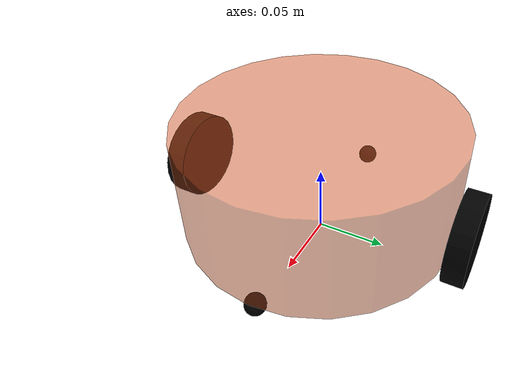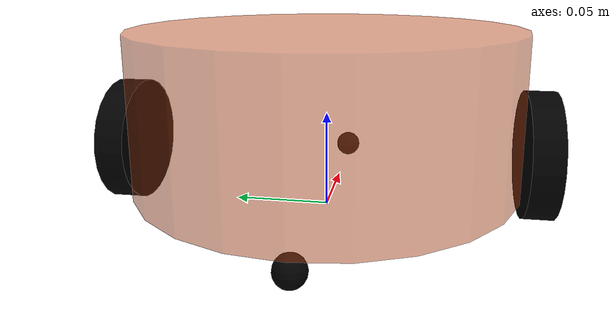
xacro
<robot name="my_car" xmlns:xacro="http://www.ros.org/wiki/xacro">

    <xacro:property name="base_footprint_size" value="0.001 0.001 0.001" />

    <link name="base_footprint">
        <visual>
            <geometry>
                <box size="${base_footprint_size}" />
            </geometry>
        </visual>
    </link>

    <xacro:property name="base_link_radius" value="0.1" />
    <xacro:property name="base_link_length" value="0.08" />
    <xacro:property name="lidi" value="0.015" />
    <xacro:property name="base_link_m" value="0.5" />

    <link name="base_link">
        <visual>
            <geometry>
                <cylinder radius="${base_link_radius}" length="${base_link_length}" />
            </geometry>
            <material name="yellow">
                <color rgba="0.8 0.3 0.1 0.5" />
            </material>
        </visual>
        <collision>
            <geometry>
                <cylinder radius="${base_link_radius}" length="${base_link_length}" />
            </geometry>
            <origin xyz="0 0 0" rpy="0 0 0" />
        </collision>
        <xacro:cylinder_inertial_matrix m="${base_link_m}" r="${base_link_radius}" h="${base_link_length}" />
    </link>

    <joint name="base_footprint2base_link" type="fixed">
        <parent link="base_footprint" />
        <child link ="base_link" />
        <origin xyz="0 0 ${lidi+base_link_length/2}" />
    </joint>
    <gazebo reference="base_link">
        <material>Gazebo/Yellow</material>
    </gazebo>

    <xacro:property name="qudong_wheel_radius" value="0.0325" />
    <xacro:property name="qudong_wheel_length" value="0.015" />
    <xacro:property name="PI" value="3.1415926" />
    <xacro:property name="wheel_mass" value="0.1" />

    <xacro:macro name="wheel_func" params="wheel_name flag">
        <link name="${wheel_name}_wheel">
            <visual>
                <geometry>
                    <cylinder radius="${qudong_wheel_radius}" length="${qudong_wheel_length}" />
                </geometry>
                <origin xyz="0 0 0" rpy="${PI/2} 0 0" />
                <material name="black">
                    <color rgba="0 0 0 1" />
                </material>
            </visual>
            <collision>
                <geometry>
                    <cylinder radius="${qudong_wheel_radius}" length="${qudong_wheel_length}" />
                </geometry>
                <origin xyz="0 0 0" rpy="${PI/2} 0 0" />
            </collision>
            <xacro:cylinder_inertial_matrix m="${wheel_mass}" r="${qudong_wheel_radius}" h="${qudong_wheel_length}" />
        </link>

        <joint name="${wheel_name}_wheel2base_link" type="continuous">
            <parent link="base_link" />
            <child link="${wheel_name}_wheel" />
            <origin xyz="0 ${flag*(base_link_radius+qudong_wheel_length/2)} ${-(lidi+base_link_length / 2-qudong_wheel_radius)}" />
            <axis xyz="0 1 0" />
        </joint>
        <gazebo reference="${wheel_name}_wheel">
            <material>Gazebo/Red</material>
        </gazebo>
    </xacro:macro>

    <xacro:wheel_func wheel_name="left" flag="1" />
    <xacro:wheel_func wheel_name="right" flag="-1" />

    <xacro:property name="wanxianglun_radius" value="0.0075" />
    <xacro:property name="wanxianglun_mass" value="0.03" />

    <xacro:macro name="wanxianglun_func" params="name flag">
        <link name="${name}_wheel">
            <visual>
                <geometry>
                    <sphere radius="${wanxianglun_radius}" />
                </geometry>
                <material name="black">
                    <color rgba="0 0 0 1" />
                </material>
            </visual>
            <collision>
                <geometry>
                    <sphere radius="${wanxianglun_radius}" />
                </geometry>
                <origin xyz="0 0 0" rpy="0 0 0" />
            </collision>
            <xacro:sphere_inertial_matrix m="${wanxianglun_mass}" r="${wanxianglun_radius}" />
        </link>

        <joint name="${name}_wheel2base_link" type="continuous">
            <parent link="base_link" />
            <child link="${name}_wheel" />
            <origin xyz="${flag*(base_link_radius-wanxianglun_radius)} 0 ${-(base_link_length/2+lidi/2)}" />
            <axis xyz="1 1 1" />
        </joint>
        <gazebo reference="${name}_wheel">
            <material>Gazebo/Red</material>
        </gazebo>
    </xacro:macro>
    <xacro:wanxianglun_func name="front" flag="-1" />
    <xacro:wanxianglun_func name="behind" flag="1" />
</robot>
